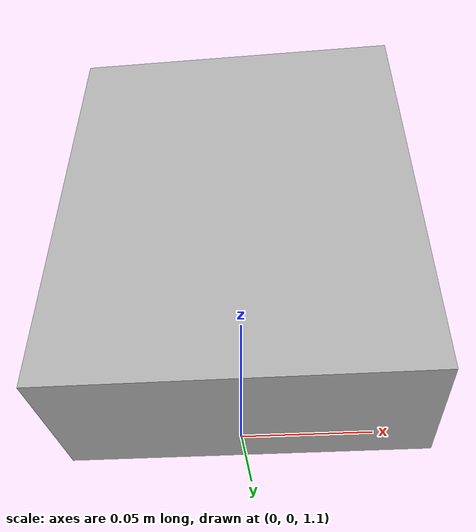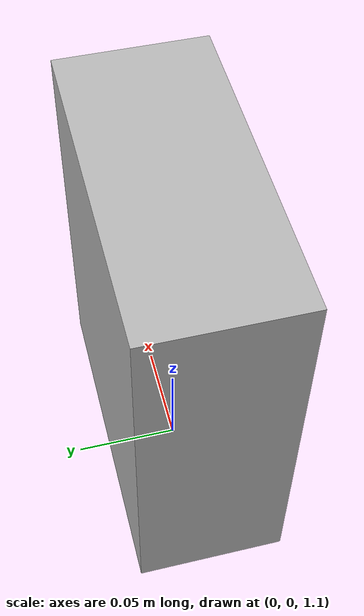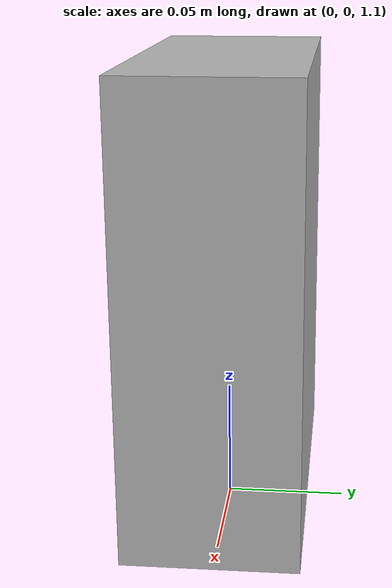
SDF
<?xml version="1.0"?>
<sdf version="1.4">
  <model name="reemc_textured_object_nograv">
    <static>0</static>
    <link name="link">
      <gravity>false</gravity>
      <collision name="colision1">
        <pose>0 0 1.2 0 0 0</pose>
        <geometry>
          <mesh>
            <uri>file://models/reemc_textured_object/meshes/mesh.dae</uri>
          </mesh>
        </geometry>
        <surface>
          <bounce />
          <friction>
            <ode />
          </friction>
          <contact>
            <ode />
          </contact>
        </surface>
      </collision>
      <visual name="visual1">
        <pose>0 0 1.2 0 0 0</pose>
        <geometry>
          <mesh>
            <uri>file://models/reemc_textured_object/meshes/mesh.dae</uri>
          </mesh>
        </geometry>
      </visual>
    </link>
  </model>
</sdf>
